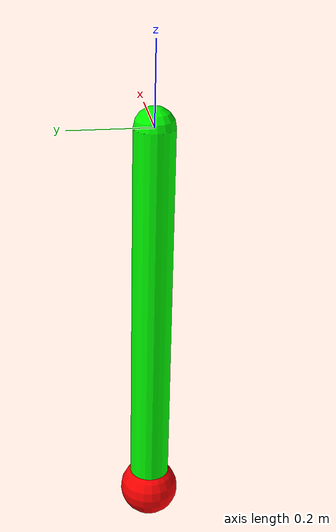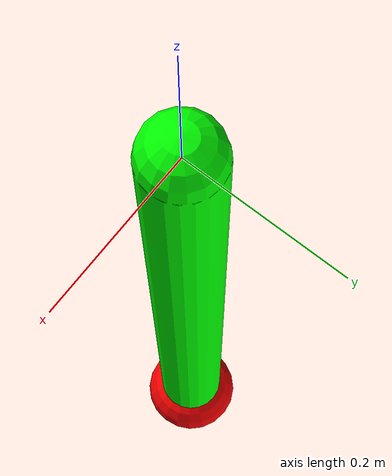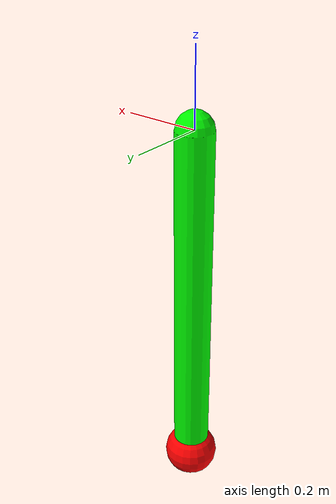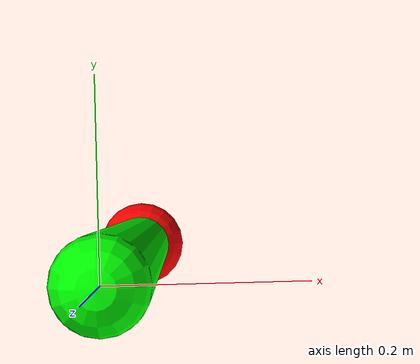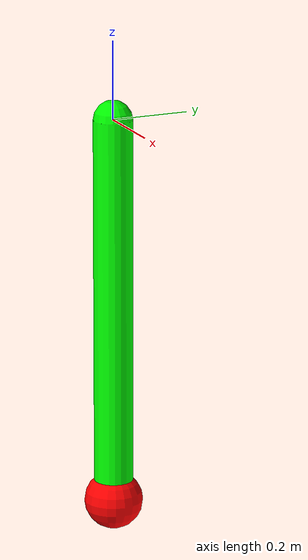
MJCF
<mujoco model="inverted_pendulum">
	<default>
		<geom contype="0" friction="1 0.1 0.1" rgba="0.7 0.7 0 1"/>
	</default>
	<option gravity="0 0 -1" integrator="RK4" timestep="0.0001"/>

    <asset>
      <texture type="skybox" builtin="gradient" rgb1="0.3 0.5 0.7" rgb2="0 0 0" width="512" height="3072" />
      <texture type="2d" name="floor" builtin="checker" mark="edge" rgb1="0.2 0.3 0.4" rgb2="0.1 0.2 0.3" markrgb="0.8 0.8 0.8" width="300" height="300" />
      <material name="floor" texture="floor" texuniform="true" texrepeat="5 5" reflectance="0.5" />
    </asset>

	<visual>
        <headlight diffuse="0.6 0.6 0.6" ambient="0.3 0.3 0.3" specular="0 0 0" />
	</visual>

	<worldbody>
    	<light name="spotlight0" mode="targetbodycom" target="pole_base" pos="0 0 10" cutoff="60" />
		<light name="spotlight1" mode="targetbodycom" target="pole_base" pos="0.5 0 10" cutoff="60" />

		<!-- pole hinge pivot -->
		<body name="pole_base" pos="0 0 0">

			<!-- hinge in the x–z plane, rotate about -y -->
			<joint name="hinge" type="hinge" axis="0 -1 0" range="-3600 3600"/>

			<!-- massless visual pole: capsule of length L = 1 m -->
			<geom name="pole_visual"
				type="capsule"
				fromto="0 0 0   0 0 -1"
				size="0.05"
				density="0"
				contype="0" conaffinity="0"
				rgba="0 1 0 1"/>

			<!-- tip mass: sphere of mass 1 kg located at the end of the pole -->
			<body name="tip" pos="0 0 -1">
				<geom name="ball" type="sphere" size="0.075" mass="1" rgba="1 0 0 1"/>
			</body>
		</body>

	</worldbody>
	<actuator>
		<motor joint="hinge" gear="1" name="hinger"/>
	</actuator>
</mujoco>
